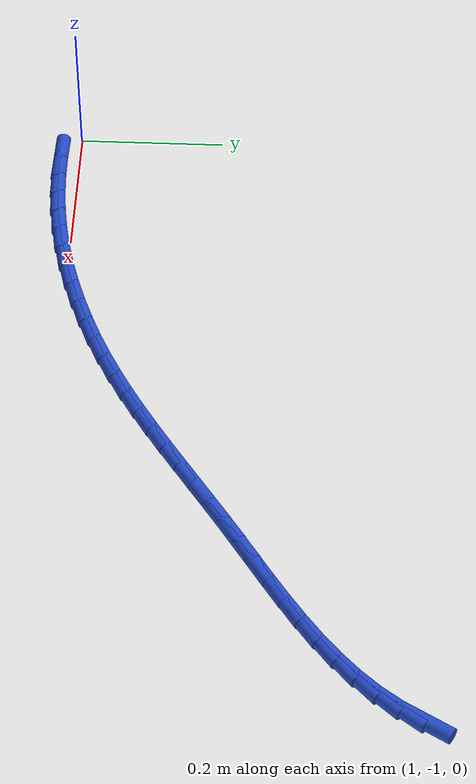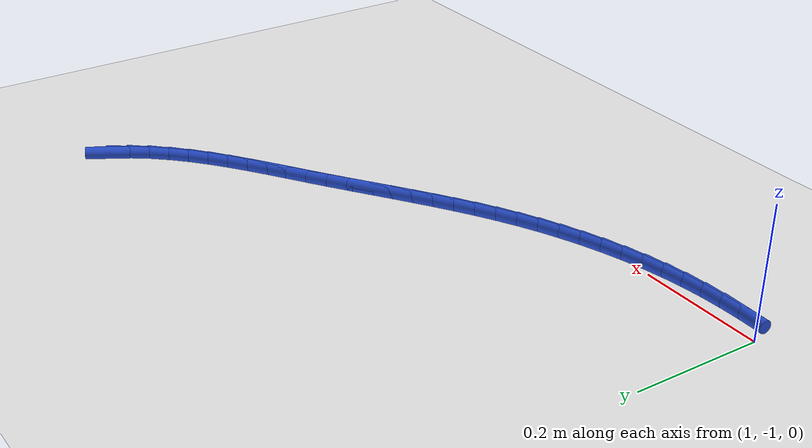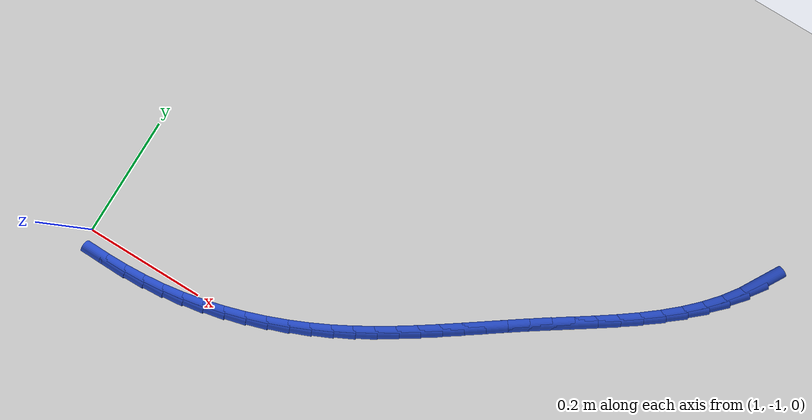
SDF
<sdf version="1.6">
 <world name="default">
  <model name="ground_plane">
   <static>1</static>
   <link name="link">
    <collision name="collision">
     <geometry><plane><normal>0 0 1</normal><size>100 100</size></plane></geometry>
     <surface><friction><ode><mu>100</mu><mu2>50</mu2></ode></friction></surface>
    </collision>
    <visual name="visual">
     <cast_shadows>0</cast_shadows>
     <geometry><plane><normal>0 0 1</normal><size>100 100</size></plane></geometry>
     <material>
      <script><uri>file://media/materials/scripts/gazebo.material</uri><name>Gazebo/WhiteGlow</name></script>
     </material>
    </visual>
   </link>
  </model>
  <model name="line">
   <link name="link_111">
    <pose>1.952185401842565 -0.519619072598998 0.01 0 1.57 1.0450734447762067</pose>
    <collision name="collision">
     <geometry><cylinder><radius>0.01</radius><length>0.08</length></cylinder></geometry>
    </collision>
    <visual name="visual">
     <material>
      <script><name>Gazebo/Blue</name><uri>file://media/materials/scripts/gazebo.material</uri></script>
     </material>
     <geometry><cylinder><radius>0.01</radius><length>0.08</length></cylinder></geometry>
    </visual>
   </link>
   <link name="link_112">
    <pose>1.9358374662186086 -0.5477961376158001 0.01 0 1.57 0.9417027055575439</pose>
    <collision name="collision">
     <geometry><cylinder><radius>0.01</radius><length>0.08</length></cylinder></geometry>
    </collision>
    <visual name="visual">
     <material>
      <script><name>Gazebo/Blue</name><uri>file://media/materials/scripts/gazebo.material</uri></script>
     </material>
     <geometry><cylinder><radius>0.01</radius><length>0.08</length></cylinder></geometry>
    </visual>
   </link>
   <link name="link_113">
    <pose>1.9165531905366597 -0.5742954489352992 0.01 0 1.57 0.8514780756340523</pose>
    <collision name="collision">
     <geometry><cylinder><radius>0.01</radius><length>0.08</length></cylinder></geometry>
    </collision>
    <visual name="visual">
     <material>
      <script><name>Gazebo/Blue</name><uri>file://media/materials/scripts/gazebo.material</uri></script>
     </material>
     <geometry><cylinder><radius>0.01</radius><length>0.08</length></cylinder></geometry>
    </visual>
   </link>
   <link name="link_114">
    <pose>1.8946615622378233 -0.5992898171807786 0.01 0 1.57 0.7760994622921756</pose>
    <collision name="collision">
     <geometry><cylinder><radius>0.01</radius><length>0.08</length></cylinder></geometry>
    </collision>
    <visual name="visual">
     <material>
      <script><name>Gazebo/Blue</name><uri>file://media/materials/scripts/gazebo.material</uri></script>
     </material>
     <geometry><cylinder><radius>0.01</radius><length>0.08</length></cylinder></geometry>
    </visual>
   </link>
   <link name="link_115">
    <pose>1.8705336967528932 -0.6229730883820138 0.01 0 1.57 0.7149417281394941</pose>
    <collision name="collision">
     <geometry><cylinder><radius>0.01</radius><length>0.08</length></cylinder></geometry>
    </collision>
    <visual name="visual">
     <material>
      <script><name>Gazebo/Blue</name><uri>file://media/materials/scripts/gazebo.material</uri></script>
     </material>
     <geometry><cylinder><radius>0.01</radius><length>0.08</length></cylinder></geometry>
    </visual>
   </link>
   <link name="link_116">
    <pose>1.8445407095126602 -0.6455391085687802 0.01 0 1.57 0.6669962033031789</pose>
    <collision name="collision">
     <geometry><cylinder><radius>0.01</radius><length>0.08</length></cylinder></geometry>
    </collision>
    <visual name="visual">
     <material>
      <script><name>Gazebo/Blue</name><uri>file://media/materials/scripts/gazebo.material</uri></script>
     </material>
     <geometry><cylinder><radius>0.01</radius><length>0.08</length></cylinder></geometry>
    </visual>
   </link>
   <link name="link_117">
    <pose>1.8170537159479174 -0.6671817237708532 0.01 0 1.57 0.6312122800767948</pose>
    <collision name="collision">
     <geometry><cylinder><radius>0.01</radius><length>0.08</length></cylinder></geometry>
    </collision>
    <visual name="visual">
     <material>
      <script><name>Gazebo/Blue</name><uri>file://media/materials/scripts/gazebo.material</uri></script>
     </material>
     <geometry><cylinder><radius>0.01</radius><length>0.08</length></cylinder></geometry>
    </visual>
   </link>
   <link name="link_118">
    <pose>1.7884438314894584 -0.6880947800180078 0.01 0 1.57 0.6066958338223754</pose>
    <collision name="collision">
     <geometry><cylinder><radius>0.01</radius><length>0.08</length></cylinder></geometry>
    </collision>
    <visual name="visual">
     <material>
      <script><name>Gazebo/Blue</name><uri>file://media/materials/scripts/gazebo.material</uri></script>
     </material>
     <geometry><cylinder><radius>0.01</radius><length>0.08</length></cylinder></geometry>
    </visual>
   </link>
   <link name="link_119">
    <pose>1.7590821715680727 -0.7084721233400204 0.01 0 1.57 0.5928115333030115</pose>
    <collision name="collision">
     <geometry><cylinder><radius>0.01</radius><length>0.08</length></cylinder></geometry>
    </collision>
    <visual name="visual">
     <material>
      <script><name>Gazebo/Blue</name><uri>file://media/materials/scripts/gazebo.material</uri></script>
     </material>
     <geometry><cylinder><radius>0.01</radius><length>0.08</length></cylinder></geometry>
    </visual>
   </link>
   <link name="link_120">
    <pose>1.7293398516145548 -0.7285075997666658 0.01 0 1.57 0.5892320608280477</pose>
    <collision name="collision">
     <geometry><cylinder><radius>0.01</radius><length>0.08</length></cylinder></geometry>
    </collision>
    <visual name="visual">
     <material>
      <script><name>Gazebo/Blue</name><uri>file://media/materials/scripts/gazebo.material</uri></script>
     </material>
     <geometry><cylinder><radius>0.01</radius><length>0.08</length></cylinder></geometry>
    </visual>
   </link>
   <link name="link_121">
    <pose>1.6995879870596964 -0.7483950553277195 0.01 0 1.57 0.5957912159788885</pose>
    <collision name="collision">
     <geometry><cylinder><radius>0.01</radius><length>0.08</length></cylinder></geometry>
    </collision>
    <visual name="visual">
     <material>
      <script><name>Gazebo/Blue</name><uri>file://media/materials/scripts/gazebo.material</uri></script>
     </material>
     <geometry><cylinder><radius>0.01</radius><length>0.08</length></cylinder></geometry>
    </visual>
   </link>
   <link name="link_122">
    <pose>1.6701920269536823 -0.7683248059298874 0.01 0 1.57 0.606141474302845</pose>
    <collision name="collision">
     <geometry><cylinder><radius>0.01</radius><length>0.08</length></cylinder></geometry>
    </collision>
    <visual name="visual">
     <material>
      <script><name>Gazebo/Blue</name><uri>file://media/materials/scripts/gazebo.material</uri></script>
     </material>
     <geometry><cylinder><radius>0.01</radius><length>0.08</length></cylinder></geometry>
    </visual>
   </link>
   <link name="link_123">
    <pose>1.6413005931158315 -0.7883520853414065 0.01 0 1.57 0.611742398523763</pose>
    <collision name="collision">
     <geometry><cylinder><radius>0.01</radius><length>0.08</length></cylinder></geometry>
    </collision>
    <visual name="visual">
     <material>
      <script><name>Gazebo/Blue</name><uri>file://media/materials/scripts/gazebo.material</uri></script>
     </material>
     <geometry><cylinder><radius>0.01</radius><length>0.08</length></cylinder></geometry>
    </visual>
   </link>
   <link name="link_124">
    <pose>1.612782622794264 -0.8083578854245367 0.01 0 1.57 0.6118623662315597</pose>
    <collision name="collision">
     <geometry><cylinder><radius>0.01</radius><length>0.08</length></cylinder></geometry>
    </collision>
    <visual name="visual">
     <material>
      <script><name>Gazebo/Blue</name><uri>file://media/materials/scripts/gazebo.material</uri></script>
     </material>
     <geometry><cylinder><radius>0.01</radius><length>0.08</length></cylinder></geometry>
    </visual>
   </link>
   <link name="link_125">
    <pose>1.5844885594609117 -0.8282116765235704 0.01 0 1.57 0.6063713082510938</pose>
    <collision name="collision">
     <geometry><cylinder><radius>0.01</radius><length>0.08</length></cylinder></geometry>
    </collision>
    <visual name="visual">
     <material>
      <script><name>Gazebo/Blue</name><uri>file://media/materials/scripts/gazebo.material</uri></script>
     </material>
     <geometry><cylinder><radius>0.01</radius><length>0.08</length></cylinder></geometry>
    </visual>
   </link>
   <link name="link_126">
    <pose>1.5562688465877033 -0.8477829289828006 0.01 0 1.57 0.5951835396042774</pose>
    <collision name="collision">
     <geometry><cylinder><radius>0.01</radius><length>0.08</length></cylinder></geometry>
    </collision>
    <visual name="visual">
     <material>
      <script><name>Gazebo/Blue</name><uri>file://media/materials/scripts/gazebo.material</uri></script>
     </material>
     <geometry><cylinder><radius>0.01</radius><length>0.08</length></cylinder></geometry>
    </visual>
   </link>
   <link name="link_127">
    <pose>1.5279739276465698 -0.8669411131465207 0.01 0 1.57 0.5782657844779676</pose>
    <collision name="collision">
     <geometry><cylinder><radius>0.01</radius><length>0.08</length></cylinder></geometry>
    </collision>
    <visual name="visual">
     <material>
      <script><name>Gazebo/Blue</name><uri>file://media/materials/scripts/gazebo.material</uri></script>
     </material>
     <geometry><cylinder><radius>0.01</radius><length>0.08</length></cylinder></geometry>
    </visual>
   </link>
   <link name="link_128">
    <pose>1.4994542461094418 -0.8855556993590223 0.01 0 1.57 0.5556499027215472</pose>
    <collision name="collision">
     <geometry><cylinder><radius>0.01</radius><length>0.08</length></cylinder></geometry>
    </collision>
    <visual name="visual">
     <material>
      <script><name>Gazebo/Blue</name><uri>file://media/materials/scripts/gazebo.material</uri></script>
     </material>
     <geometry><cylinder><radius>0.01</radius><length>0.08</length></cylinder></geometry>
    </visual>
   </link>
   <link name="link_129">
    <pose>1.4705602454482491 -0.9034961579645987 0.01 0 1.57 0.527449628489808</pose>
    <collision name="collision">
     <geometry><cylinder><radius>0.01</radius><length>0.08</length></cylinder></geometry>
    </collision>
    <visual name="visual">
     <material>
      <script><name>Gazebo/Blue</name><uri>file://media/materials/scripts/gazebo.material</uri></script>
     </material>
     <geometry><cylinder><radius>0.01</radius><length>0.08</length></cylinder></geometry>
    </visual>
   </link>
   <link name="link_130">
    <pose>1.4411423691349232 -0.9206319593075429 0.01 0 1.57 0.49387959232113837</pose>
    <collision name="collision">
     <geometry><cylinder><radius>0.01</radius><length>0.08</length></cylinder></geometry>
    </collision>
    <visual name="visual">
     <material>
      <script><name>Gazebo/Blue</name><uri>file://media/materials/scripts/gazebo.material</uri></script>
     </material>
     <geometry><cylinder><radius>0.01</radius><length>0.08</length></cylinder></geometry>
    </visual>
   </link>
   <link name="link_131">
    <pose>1.4110510606413929 -0.9368325737321469 0.01 0 1.57 0.45579181062100693</pose>
    <collision name="collision">
     <geometry><cylinder><radius>0.01</radius><length>0.08</length></cylinder></geometry>
    </collision>
    <visual name="visual">
     <material>
      <script><name>Gazebo/Blue</name><uri>file://media/materials/scripts/gazebo.material</uri></script>
     </material>
     <geometry><cylinder><radius>0.01</radius><length>0.08</length></cylinder></geometry>
    </visual>
   </link>
   <link name="link_132">
    <pose>1.3801669624999602 -0.9519725291217603 0.01 0 1.57 0.4162258349716708</pose>
    <collision name="collision">
     <geometry><cylinder><radius>0.01</radius><length>0.08</length></cylinder></geometry>
    </collision>
    <visual name="visual">
     <material>
      <script><name>Gazebo/Blue</name><uri>file://media/materials/scripts/gazebo.material</uri></script>
     </material>
     <geometry><cylinder><radius>0.01</radius><length>0.08</length></cylinder></geometry>
    </visual>
   </link>
   <link name="link_133">
    <pose>1.3485377502888047 -0.9659543269504007 0.01 0 1.57 0.3759048889484854</pose>
    <collision name="collision">
     <geometry><cylinder><radius>0.01</radius><length>0.08</length></cylinder></geometry>
    </collision>
    <visual name="visual">
     <material>
      <script><name>Gazebo/Blue</name><uri>file://media/materials/scripts/gazebo.material</uri></script>
     </material>
     <geometry><cylinder><radius>0.01</radius><length>0.08</length></cylinder></geometry>
    </visual>
   </link>
   <link name="link_134">
    <pose>1.3162685287211455 -0.9786900865440926 0.01 0 1.57 0.3345121120349866</pose>
    <collision name="collision">
     <geometry><cylinder><radius>0.01</radius><length>0.08</length></cylinder></geometry>
    </collision>
    <visual name="visual">
     <material>
      <script><name>Gazebo/Blue</name><uri>file://media/materials/scripts/gazebo.material</uri></script>
     </material>
     <geometry><cylinder><radius>0.01</radius><length>0.08</length></cylinder></geometry>
    </visual>
   </link>
   <link name="link_135">
    <pose>1.2834644549790977 -0.9900919360160061 0.01 0 1.57 0.29173108233924205</pose>
    <collision name="collision">
     <geometry><cylinder><radius>0.01</radius><length>0.08</length></cylinder></geometry>
    </collision>
    <visual name="visual">
     <material>
      <script><name>Gazebo/Blue</name><uri>file://media/materials/scripts/gazebo.material</uri></script>
     </material>
     <geometry><cylinder><radius>0.01</radius><length>0.08</length></cylinder></geometry>
    </visual>
   </link>
   <link name="link_136">
    <pose>1.2502306862447776 -1.0000720034793111 0.01 0 1.57 0.2472445280633833</pose>
    <collision name="collision">
     <geometry><cylinder><radius>0.01</radius><length>0.08</length></cylinder></geometry>
    </collision>
    <visual name="visual">
     <material>
      <script><name>Gazebo/Blue</name><uri>file://media/materials/scripts/gazebo.material</uri></script>
     </material>
     <geometry><cylinder><radius>0.01</radius><length>0.08</length></cylinder></geometry>
    </visual>
   </link>
   <link name="link_137">
    <pose>1.2166723797002998 -1.0085424170471768 0.01 0 1.57 0.20073389142138023</pose>
    <collision name="collision">
     <geometry><cylinder><radius>0.01</radius><length>0.08</length></cylinder></geometry>
    </collision>
    <visual name="visual">
     <material>
      <script><name>Gazebo/Blue</name><uri>file://media/materials/scripts/gazebo.material</uri></script>
     </material>
     <geometry><cylinder><radius>0.01</radius><length>0.08</length></cylinder></geometry>
    </visual>
   </link>
   <link name="link_138">
    <pose>1.1828946925277797 -1.0154153048327732 0.01 0 1.57 0.1518810959321234</pose>
    <collision name="collision">
     <geometry><cylinder><radius>0.01</radius><length>0.08</length></cylinder></geometry>
    </collision>
    <visual name="visual">
     <material>
      <script><name>Gazebo/Blue</name><uri>file://media/materials/scripts/gazebo.material</uri></script>
     </material>
     <geometry><cylinder><radius>0.01</radius><length>0.08</length></cylinder></geometry>
    </visual>
   </link>
   <link name="link_139">
    <pose>1.1490027819093327 -1.0206027949492689 0.01 0 1.57 0.10134654298554714</pose>
    <collision name="collision">
     <geometry><cylinder><radius>0.01</radius><length>0.08</length></cylinder></geometry>
    </collision>
    <visual name="visual">
     <material>
      <script><name>Gazebo/Blue</name><uri>file://media/materials/scripts/gazebo.material</uri></script>
     </material>
     <geometry><cylinder><radius>0.01</radius><length>0.08</length></cylinder></geometry>
    </visual>
   </link>
   <link name="link_140">
    <pose>1.1150859510847664 -1.0240519655467701 0.01 0 1.57 0.054278257306509536</pose>
    <collision name="collision">
     <geometry><cylinder><radius>0.01</radius><length>0.08</length></cylinder></geometry>
    </collision>
    <visual name="visual">
     <material>
      <script><name>Gazebo/Blue</name><uri>file://media/materials/scripts/gazebo.material</uri></script>
     </material>
     <geometry><cylinder><radius>0.01</radius><length>0.08</length></cylinder></geometry>
    </visual>
   </link>
   <link name="link_141">
    <pose>1.081149170774354 -1.0258958059270276 0.01 0 1.57 0.012744353620033334</pose>
    <collision name="collision">
     <geometry><cylinder><radius>0.01</radius><length>0.08</length></cylinder></geometry>
    </collision>
    <visual name="visual">
     <material>
      <script><name>Gazebo/Blue</name><uri>file://media/materials/scripts/gazebo.material</uri></script>
     </material>
     <geometry><cylinder><radius>0.01</radius><length>0.08</length></cylinder></geometry>
    </visual>
   </link>
   <link name="link_142">
    <pose>1.0471694810445058 -1.0263288785554403 0.01 0 1.57 -0.022997255353666396</pose>
    <collision name="collision">
     <geometry><cylinder><radius>0.01</radius><length>0.08</length></cylinder></geometry>
    </collision>
    <visual name="visual">
     <material>
      <script><name>Gazebo/Blue</name><uri>file://media/materials/scripts/gazebo.material</uri></script>
     </material>
     <geometry><cylinder><radius>0.01</radius><length>0.08</length></cylinder></geometry>
    </visual>
   </link>
  </model>
 </world>
</sdf>
